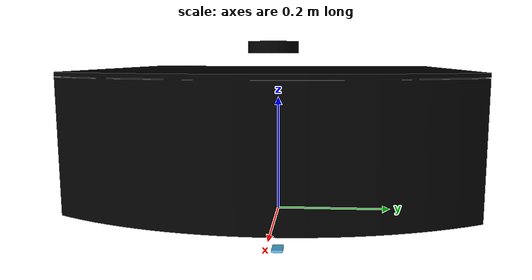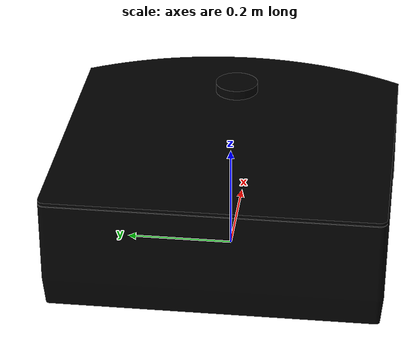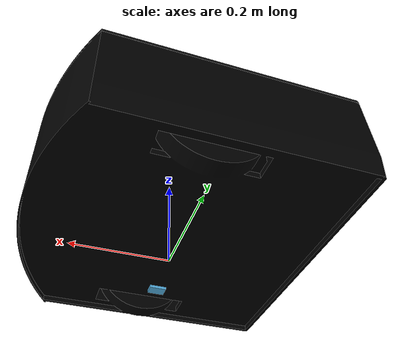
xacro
<?xml version="1.0"?>
<robot xmlns:xacro="http://www.ros.org/wiki/xacro" name="mobile_base_mkii">

  <xacro:property name="platform_l" value="0.6096" />
  <xacro:property name="platform_w" value="0.6096" />
  <xacro:property name="platform_h" value="0.2413" />
  <xacro:property name="pi" value="3.14159265359" />

  <link name="base_link">
    <visual>
      <origin rpy="0 0 ${pi/2}" xyz="0 0 ${platform_h/2}"/>
      <geometry>
        <mesh filename="package://mobile_base/urdf/meshes/mobile_base_mkii.stl"  scale="1 1 1" />
      </geometry>
      <material name="black">
        <color rgb="0 0 0" />
      </material>
    </visual>
  </link>

  <link name="imu_link">
    <visual>
      <origin rpy="0 0 0" xyz="0 0 0"/>
      <geometry>
	<box size="0.0305 0.0203 0.0051"/>
      </geometry>
    </visual>
  </link>
  <joint name="base_link_to_imu_link" type="fixed">
    <origin rpy="0 0 0" xyz="0.0238 0 -${platform_h/2 - 0.05}" />
    <parent link="base_link"/>
    <child link="imu_link"/>
  </joint>

  <link name="neato_laser">
    <visual>
      <geometry>
        <cylinder length="0.018" radius="0.04"/>
      </geometry>
      <material name="black">
        <color rgba="0 0 0 1"/>
      </material>
    </visual>
  </link>
  <joint name="base_link_to_neato_laser" type="fixed">
    <origin rpy="0 0 0" xyz="0.102 0  ${platform_h + 0.045}" />
    <parent link="base_link"/>
    <child link="neato_laser"/>
  </joint>

</robot>
